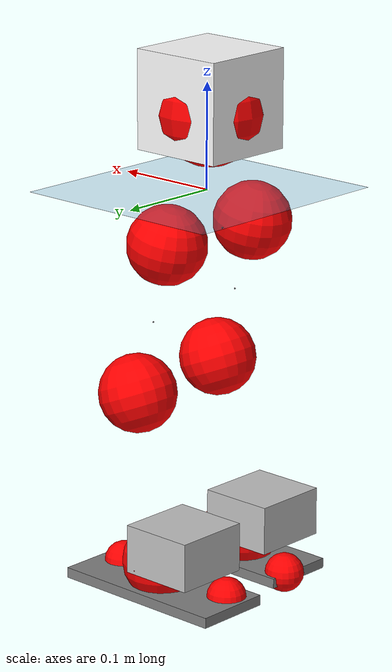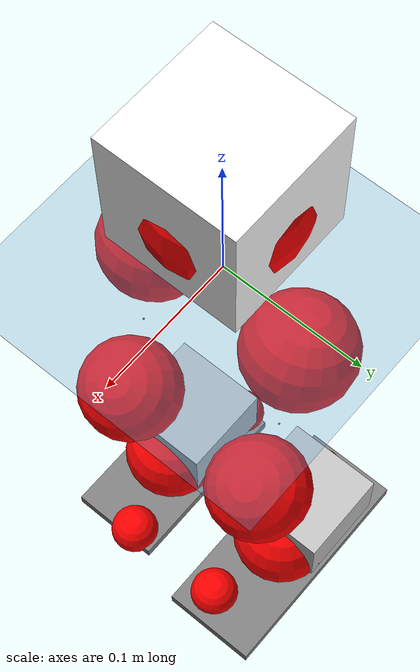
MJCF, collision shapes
<mujoco model="pi_12dof_release_v1">
  <compiler angle="radian" assetdir="assets" balanceinertia="true" inertiafromgeom="false"/>

  <option timestep="0.005" density="1.2" viscosity="2e-05"/>

  <size nkey="1"/>

  <visual>
    <quality shadowsize="8192"/>
    <map shadowclip="0.5"/>
  </visual>

  <default>
    <default class="/">
      <joint armature="0.01" damping="0.01" frictionloss="0.01"/>
      <geom contype="0" conaffinity="0" group="1" solref="-1000 -80"/>
      <site size="0.01 0.005 0.005" group="5"/>
      <general forcelimited="true" biastype="affine" gainprm="20" biasprm="0 -20 -0.5"/>
      <default class="foot">
        <geom size="0.0845 0.036 0.005" type="box" condim="6" group="4" priority="1" friction="0.9 0.2 0.2" solimp="0.015 1 0.005"/>
      </default>
      <default class="reward_collision_sphere">
        <geom group="5" rgba="1 0 0 1"/>
      </default>
    </default>
  </default>

  <asset>
    <texture type="skybox" colorspace="auto" name="//unnamed_texture_0" builtin="gradient" rgb1="0.95 0.95 0.95" rgb2="0.95 0.95 0.95" width="100" height="600"/>
    <texture type="2d" colorspace="auto" name="texplane" builtin="checker" rgb1="0.345 0.575 0.748" rgb2="0.345 0.575 0.748" markrgb="1 1 1" width="512" height="512"/>
    <material name="MatPlane" class="/" texture="texplane" texuniform="true" texrepeat="2 2" specular="0.9"/>
    <mesh name="baselink_1" class="/" file="baselink_1.STL"/>
    <mesh name="r_hip_pitch_link" class="/" file="r_hip_pitch_link.STL"/>
    <mesh name="r_hip_roll_link" class="/" file="r_hip_roll_link.STL"/>
    <mesh name="r_thigh_link" class="/" file="r_thigh_link.STL"/>
    <mesh name="r_calf_link" class="/" file="r_calf_link.STL"/>
    <mesh name="r_ankle_pitch_link" class="/" file="r_ankle_pitch_link.STL"/>
    <mesh name="r_ankle_roll_link" class="/" file="r_ankle_roll_link.STL"/>
    <mesh name="l_hip_pitch_link" class="/" file="l_hip_pitch_link.STL"/>
    <mesh name="l_hip_roll_link" class="/" file="l_hip_roll_link.STL"/>
    <mesh name="l_thigh_link" class="/" file="l_thigh_link.STL"/>
    <mesh name="l_calf_link" class="/" file="l_calf_link.STL"/>
    <mesh name="l_ankle_pitch_link" class="/" file="l_ankle_pitch_link.STL"/>
    <mesh name="l_ankle_roll_link" class="/" file="l_ankle_roll_link.STL"/>
  </asset>

  <worldbody>
    <geom name="floor" class="/" size="100 100 0.125" type="plane" group="0" material="MatPlane"/>
    <light name="toplight_shadow" class="/" pos="0 0 5" dir="0.0990148 0.0990148 -0.990148" type="directional" ambient="0.04 0.04 0.04" diffuse="0.55 0.55 0.55" specular="0.12 0.12 0.12"/>
    <light name="toplight_fill" class="/" pos="0 0 5" dir="0.0990148 0.0990148 -0.990148" type="directional" castshadow="false" ambient="0.04 0.04 0.04" diffuse="0.3 0.3 0.3" specular="0.08 0.08 0.08"/>
    <body name="trunk" pos="-0.00267638 -0.00107191 -0.00172218" quat="0.999999 -6.92422e-05 -0.00115393 0.000345293">
      <inertial pos="0.000374401 0.00102606 0.0427935" quat="0.699687 0.0101344 -0.00319146 0.714371" mass="1.72377" diaginertia="0.00872429 0.0018591 0.00628015"/>
      <joint name="//unnamed_joint_0" type="free"/>
      <geom name="//unnamed_geom_1" class="/" type="mesh" density="0" rgba="1 1 1 1" mesh="baselink_1"/>
      <geom name="//unnamed_geom_2" class="/" size="0.0464028 0.0464028 0.0464028" pos="0 0 0.0865501" type="box" rgba="1 1 1 1"/>
      <geom name="//unnamed_geom_3" class="reward_collision_sphere" size="0.0510431" pos="0 0 0.0757314"/>
      <site name="imu" class="/" pos="0.0101399 -0.00990677 -0.00264662" size="0.00928056"/>
      <camera name="track" class="/" pos="0 -1.45814 0" quat="0.707107 0.707107 0 0" mode="trackcom"/>
      <camera name="ego_camera" class="/" pos="0.0729915 0 0.194738" quat="-0.5 -0.5 0.5 0.5"/>
      <body name="r_hip_pitch_link" pos="-0.000413697 -0.0164731 -0.0369401" quat="0.992301 -0.00017736 -0.123847 -0.000629368">
        <inertial pos="-0.000955801 -0.0406446 0.000440345" quat="-0.02921 0.700869 -0.0228352 0.712326" mass="0.305579" diaginertia="9.76591e-05 2.08288e-05 0.000129875"/>
        <joint name="r_hip_pitch_joint" class="/" pos="0 0 0" axis="-0.00126381 -0.999998 0.00124504" range="-1.73767 1.2321" armature="0.00838651" damping="0.00489543" frictionloss="0.00917351"/>
        <geom name="//unnamed_geom_4" class="/" type="mesh" density="0" rgba="0.75294 0.75294 0.75294 1" mesh="r_hip_pitch_link"/>
        <geom name="//unnamed_geom_5" class="/" size="0.000464028 0.000464028 0.000464028" type="box" rgba="0.75294 0.75294 0.75294 1"/>
        <body name="r_hip_roll_link" pos="-0.00108278 -0.0400789 -0.000147623" quat="1 -0.00019282 -0.000283724 0.000158424">
          <inertial pos="-0.00135089 -0.00267156 -0.068003" quat="0.706279 -0.0796202 -0.0827981 0.698552" mass="0.313997" diaginertia="0.000287532 5.57852e-05 0.000187795"/>
          <joint name="r_hip_roll_joint" class="/" pos="0 0 0" axis="-0.999914 -0.00832322 -0.0101238" range="-0.141306 0.550861" armature="0.00945387" damping="0.00922085" frictionloss="0.00918666"/>
          <geom name="//unnamed_geom_6" class="/" type="mesh" density="0" rgba="0.75294 0.75294 0.75294 1" mesh="r_hip_roll_link"/>
          <geom name="//unnamed_geom_7" class="/" size="0.000464028 0.000464028 0.000464028" type="box" rgba="0.75294 0.75294 0.75294 1"/>
          <geom name="//unnamed_geom_8" class="reward_collision_sphere" size="0.0371222"/>
          <body name="r_thigh_link" pos="0.00145125 0.00259733 -0.072113" quat="1 8.00226e-06 -0.000315333 5.44425e-06">
            <inertial pos="0.000640041 -0.00148004 -0.0488303" quat="0.738104 0.674686 -0.000601563 -0.000919382" mass="0.093639" diaginertia="0.000113403 1.97988e-05 8.60532e-05"/>
            <joint name="r_thigh_joint" class="/" pos="0 0 0" axis="0.0126851 -0.00722693 -0.999893" stiffness="0.00873624" range="-0.304981 0.609732" armature="0.00878191" damping="0" frictionloss="0.00837611"/>
            <geom name="//unnamed_geom_9" class="/" type="mesh" density="0" rgba="0.75294 0.75294 0.75294 1" mesh="r_thigh_link"/>
            <geom name="//unnamed_geom_10" class="/" size="0.000464028 0.000464028 0.000464028" type="box" rgba="0.75294 0.75294 0.75294 1"/>
            <body name="r_calf_link" pos="0.00230176 0.00105686 -0.0737365" quat="0.947672 -4.8652e-06 0.319247 -8.08562e-06">
              <inertial pos="-0.000324106 -0.00320193 -0.0753046" quat="0.999925 0.00916473 -0.00231832 0.00775502" mass="0.672828" diaginertia="0.00309608 0.000752486 0.000263356"/>
              <joint name="r_calf_joint" class="/" pos="0 0 0" axis="-0.00512484 -0.999987 0.000142175" range="-1.59814 0.643895" armature="0.00788192" damping="0.0036553" frictionloss="0.00906349"/>
              <geom name="//unnamed_geom_11" class="/" type="mesh" density="0" rgba="0.75294 0.75294 0.75294 1" mesh="r_calf_link"/>
              <geom name="//unnamed_geom_12" class="/" size="0.000464028 0.000464028 0.000464028" type="box" rgba="0.75294 0.75294 0.75294 1"/>
              <geom name="//unnamed_geom_13" class="reward_collision_sphere" size="0.0371222"/>
              <body name="r_ankle_pitch_link" pos="0.00230444 0.000290839 -0.153875" quat="0.980084 -0.000110953 -0.198583 -2.60526e-05">
                <inertial pos="0.00416361 0.00258733 -0.00257956" quat="0.00344661 0.700767 -0.00479594 0.713365" mass="0.145071" diaginertia="0.000270573 4.70523e-05 0.000182818"/>
                <joint name="r_ankle_pitch_joint" class="/" pos="0 0 0" axis="0.00197795 -0.999998 -0.000708967" range="-1.30395 0.544594" armature="0.00932223" damping="0.00660038" frictionloss="0.010557"/>
                <geom name="//unnamed_geom_14" class="/" type="mesh" density="0" rgba="0.75294 0.75294 0.75294 1" mesh="r_ankle_pitch_link"/>
                <geom name="//unnamed_geom_15" class="/" size="0.0361942 0.0371222 0.0232014" type="box" rgba="0.75294 0.75294 0.75294 1"/>
                <body name="r_ankle_roll_link" pos="0.0737619 0.00137834 -0.00154714" quat="1 -7.88026e-05 -0.000168079 0.000169655">
                  <inertial pos="-0.0238683 0.000159695 -0.0138346" quat="0.561086 0.425091 0.441585 0.556312" mass="0.390974" diaginertia="0.000977423 0.000212903 0.000396591"/>
                  <joint name="r_ankle_roll_joint" class="/" pos="0 0 0" axis="-0.999906 0.0126252 -0.00525483" range="-0.10019 0.0959607" armature="0.00809295" damping="0.0220762" frictionloss="0.00834572"/>
                  <geom name="//unnamed_geom_16" class="/" type="mesh" density="0" rgba="0.75294 0.75294 0.75294 1" mesh="r_ankle_roll_link"/>
                  <geom name="//unnamed_geom_17" class="/" type="mesh" rgba="0.75294 0.75294 0.75294 1" mesh="r_ankle_roll_link"/>
                  <geom name="right_foot" class="foot" size="0.0720363 0.035639 0.00478286" pos="-0.0496342 0 -0.0476026"/>
                  <geom name="//unnamed_geom_19" class="reward_collision_sphere" size="0.0371222" pos="-0.048661 0 -0.0216375"/>
                  <geom name="//unnamed_geom_20" class="reward_collision_sphere" size="0.0185611" pos="0.0145983 0.0145814 -0.0432751"/>
                  <geom name="//unnamed_geom_21" class="reward_collision_sphere" size="0.0185611" pos="-0.116786 0.0145814 -0.0432751"/>
                  <site name="right_foot" class="foot" pos="-0.0496342 0 -0.0476026" size="0.00928056"/>
                </body>
              </body>
            </body>
          </body>
        </body>
      </body>
      <body name="l_hip_pitch_link" pos="0.000224449 0.0154902 -0.0378829" quat="0.992196 5.33574e-05 -0.124685 0.000471048">
        <inertial pos="0.000631138 0.0402708 -0.0028387" quat="-0.0424562 0.706191 0.0260623 0.706267" mass="0.325805" diaginertia="0.000117387 2.12251e-05 0.000149997"/>
        <joint name="l_hip_pitch_joint" class="/" pos="0 0 0" axis="-0.00544944 0.999972 -0.0051349" range="-1.192 1.7393" armature="0.0106342" damping="0.00569529" frictionloss="0.00977895"/>
        <geom name="//unnamed_geom_22" class="/" type="mesh" density="0" rgba="0.75294 0.75294 0.75294 1" mesh="l_hip_pitch_link"/>
        <geom name="//unnamed_geom_23" class="/" size="0.000464028 0.000464028 0.000464028" type="box" rgba="0.75294 0.75294 0.75294 1"/>
        <body name="l_hip_roll_link" pos="-0.000444857 0.0413485 -0.000364413" quat="1 0.000170053 0.000111257 -2.86705e-05">
          <inertial pos="-0.00422648 -0.00125143 -0.0678328" quat="0.692304 -0.0748799 -0.0880106 0.712293" mass="0.318522" diaginertia="0.000285508 5.8188e-05 0.000186602"/>
          <joint name="l_hip_roll_joint" class="/" pos="0 0 0" axis="-0.999995 0.000709447 0.00319893" range="-0.549687 0.172671" armature="0.00846861" damping="0" frictionloss="0.00928763"/>
          <geom name="//unnamed_geom_24" class="/" type="mesh" density="0" rgba="0.75294 0.75294 0.75294 1" mesh="l_hip_roll_link"/>
          <geom name="//unnamed_geom_25" class="/" size="0.000464028 0.000464028 0.000464028" type="box" rgba="0.75294 0.75294 0.75294 1"/>
          <geom name="//unnamed_geom_26" class="reward_collision_sphere" size="0.0371222"/>
          <body name="l_thigh_link" pos="-0.00255512 0.000821076 -0.0777099" quat="1 0.000101489 -2.40355e-06 -2.21531e-07">
            <inertial pos="0.00230648 -0.00377344 -0.0488371" quat="0.673648 0.738923 0.00642417 -0.0122413" mass="0.0870144" diaginertia="0.000109514 1.9722e-05 8.5438e-05"/>
            <joint name="l_thigh_joint" class="/" pos="0 0 0" axis="0.00105264 0.000525017 -0.999999" range="-0.594405 0.260941" armature="0.00919642" damping="0.000652783" frictionloss="0.00975596"/>
            <geom name="//unnamed_geom_27" class="/" type="mesh" density="0" rgba="0.75294 0.75294 0.75294 1" mesh="l_thigh_link"/>
            <geom name="//unnamed_geom_28" class="/" size="0.000464028 0.000464028 0.000464028" type="box" rgba="0.75294 0.75294 0.75294 1"/>
            <body name="l_calf_link" pos="0.000760871 0.000555558 -0.0747584" quat="0.947692 -5.78811e-06 0.319186 6.82777e-05">
              <inertial pos="0.000567795 0.00490478 -0.078532" quat="0.999985 0.00265646 -0.000163704 0.004862" mass="0.642017" diaginertia="0.00302789 0.000709122 0.00025207"/>
              <joint name="l_calf_joint" class="/" pos="0 0 0" axis="-0.0035374 0.999993 -0.00138478" range="-0.607213 1.7054" armature="0.00932047" damping="0.00928619" frictionloss="0.00942499"/>
              <geom name="//unnamed_geom_29" class="/" type="mesh" density="0" rgba="0.75294 0.75294 0.75294 1" mesh="l_calf_link"/>
              <geom name="//unnamed_geom_30" class="/" size="0.000464028 0.000464028 0.000464028" type="box" rgba="0.75294 0.75294 0.75294 1"/>
              <geom name="//unnamed_geom_31" class="reward_collision_sphere" size="0.0371222"/>
              <body name="l_ankle_pitch_link" pos="-6.78025e-06 0.000585971 -0.14906" quat="0.980077 -7.43652e-05 -0.198619 -0.000221536">
                <inertial pos="0.00231188 0.00197665 0.000289541" quat="-0.00125494 0.707399 0.0020568 0.70681" mass="0.130941" diaginertia="0.000263625 4.45447e-05 0.000177356"/>
                <joint name="l_ankle_pitch_joint" class="/" pos="0 0 0" axis="0.000222375 0.999995 -0.00314624" range="-0.55736 1.32069" armature="0.00807894" damping="0.0141466" frictionloss="0.008934"/>
                <geom name="//unnamed_geom_32" class="/" type="mesh" density="0" rgba="0.75294 0.75294 0.75294 1" mesh="l_ankle_pitch_link"/>
                <geom name="//unnamed_geom_33" class="/" size="0.0361942 0.0371222 0.0232014" type="box" rgba="0.75294 0.75294 0.75294 1"/>
                <body name="l_ankle_roll_link" pos="0.0758655 0.000114727 0.00210955" quat="1 -0.000142935 -0.000524594 -3.20499e-05">
                  <inertial pos="-0.0235779 -0.000119732 -0.0157459" quat="0.563042 0.431368 0.434849 0.554808" mass="0.387583" diaginertia="0.000966397 0.000207497 0.000404661"/>
                  <joint name="l_ankle_roll_joint" class="/" pos="0 0 0" axis="-0.999999 0.000177844 0.00156131" range="-0.150601 0.153339" armature="0.0106055" damping="0.00704725" frictionloss="0.00922513"/>
                  <geom name="//unnamed_geom_34" class="/" type="mesh" density="0" rgba="0.75294 0.75294 0.75294 1" mesh="l_ankle_roll_link"/>
                  <geom name="//unnamed_geom_35" class="/" type="mesh" rgba="0.75294 0.75294 0.75294 1" mesh="l_ankle_roll_link"/>
                  <geom name="left_foot" class="foot" size="0.0885178 0.0371745 0.00497922" pos="-0.0496342 0 -0.0476026"/>
                  <geom name="//unnamed_geom_37" class="reward_collision_sphere" size="0.0371222" pos="-0.048661 0 -0.0216375"/>
                  <geom name="//unnamed_geom_38" class="reward_collision_sphere" size="0.0185611" pos="0.0145983 -0.0145814 -0.0432751"/>
                  <geom name="//unnamed_geom_39" class="reward_collision_sphere" size="0.0185611" pos="-0.116786 -0.0145814 -0.0432751"/>
                  <site name="left_foot" class="foot" pos="-0.0496342 0 -0.0476026" size="0.00928056"/>
                </body>
              </body>
            </body>
          </body>
        </body>
      </body>
    </body>
  </worldbody>

  <contact>
    <pair class="/" geom1="floor" geom2="right_foot" name="//unnamed_contact_1"/>
    <pair class="/" geom1="floor" geom2="left_foot" name="//unnamed_contact_0"/>
  </contact>

  <actuator>
    <general name="r_hip_pitch_joint" class="/" joint="r_hip_pitch_joint" forcerange="-19.6098 19.6098" gainprm="18.3796" biasprm="0 -18.3796 -0.450149"/>
    <general name="r_hip_roll_joint" class="/" joint="r_hip_roll_joint" forcerange="-17.522 17.522" gainprm="18.3796" biasprm="0 -18.3796 -0.450149"/>
    <general name="r_thigh_joint" class="/" joint="r_thigh_joint" forcerange="-20.9148 20.9148" gainprm="18.3796" biasprm="0 -18.3796 -0.450149"/>
    <general name="r_calf_joint" class="/" joint="r_calf_joint" forcerange="-19.3027 19.3027" gainprm="18.3796" biasprm="0 -18.3796 -0.450149"/>
    <general name="r_ankle_pitch_joint" class="/" joint="r_ankle_pitch_joint" forcerange="-19.873 19.873" gainprm="18.3796" biasprm="0 -18.3796 -0.450149"/>
    <general name="r_ankle_roll_joint" class="/" joint="r_ankle_roll_joint" forcerange="-20.8814 20.8814" gainprm="18.3796" biasprm="0 -18.3796 -0.450149"/>
    <general name="l_hip_pitch_joint" class="/" joint="l_hip_pitch_joint" forcerange="-18.7526 18.7526" gainprm="18.3796" biasprm="0 -18.3796 -0.450149"/>
    <general name="l_hip_roll_joint" class="/" joint="l_hip_roll_joint" forcerange="-21.5469 21.5469" gainprm="18.3796" biasprm="0 -18.3796 -0.450149"/>
    <general name="l_thigh_joint" class="/" joint="l_thigh_joint" forcerange="-17.5624 17.5624" gainprm="18.3796" biasprm="0 -18.3796 -0.450149"/>
    <general name="l_calf_joint" class="/" joint="l_calf_joint" forcerange="-18.8723 18.8723" gainprm="18.3796" biasprm="0 -18.3796 -0.450149"/>
    <general name="l_ankle_pitch_joint" class="/" joint="l_ankle_pitch_joint" forcerange="-21.1292 21.1292" gainprm="18.3796" biasprm="0 -18.3796 -0.450149"/>
    <general name="l_ankle_roll_joint" class="/" joint="l_ankle_roll_joint" forcerange="-20.8209 20.8209" gainprm="18.3796" biasprm="0 -18.3796 -0.450149"/>
  </actuator>

  <sensor>
    <gyro site="imu" name="imu_angular_velocity"/>
    <velocimeter site="imu" name="imu_linear_velocity"/>
    <framelinvel objtype="site" objname="left_foot" name="left_foot_global_linear_velocity"/>
    <framelinvel objtype="site" objname="right_foot" name="right_foot_global_linear_velocity"/>
  </sensor>

  <keyframe>
    <key name="home" qpos="0 0 0.291 1 0 0 0 0.4 0 0 -0.8 0.4 0 -0.4 0 0 0.8 -0.4 0"/>
  </keyframe>
</mujoco>
